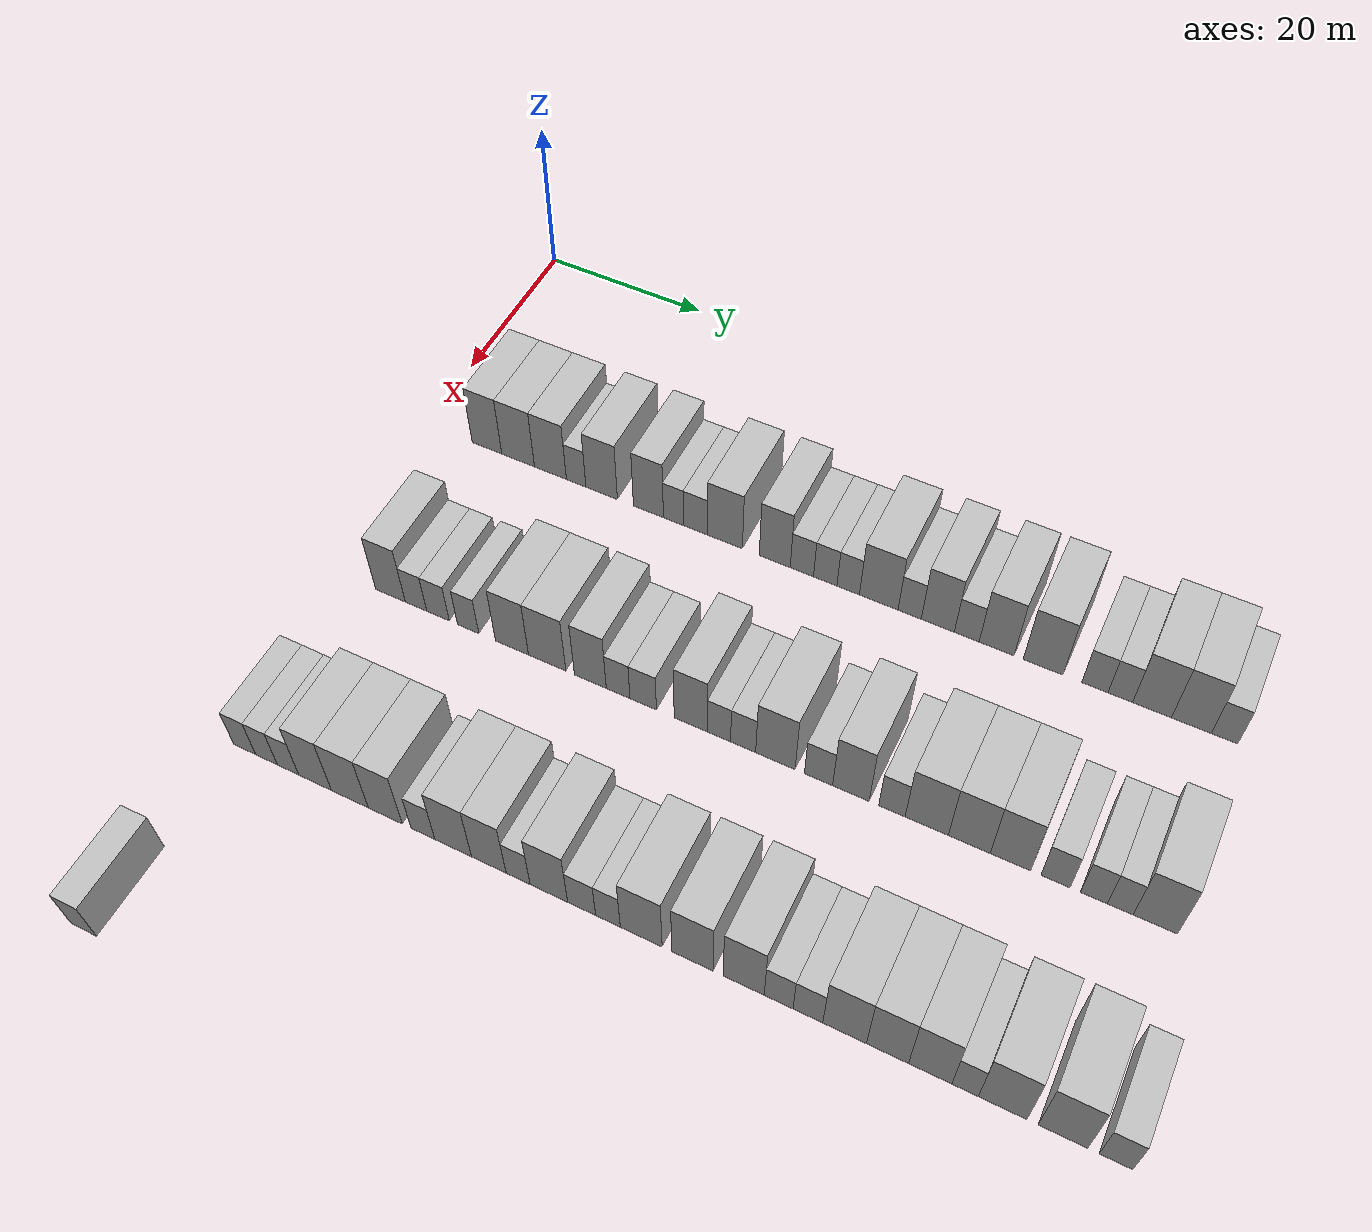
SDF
<sdf version="1.6">
 <world name="default">
  <model name="building_95">
   <static>1</static>
   <pose>25.0000 8.0468 0 0.000000 0.000000 0.000000</pose>
   <link name="link">
    <pose>0 0 4.50 0 0 0</pose>
    <collision name="collision"><geometry><box><size>10.0000 3.8719 9.0000</size></box></geometry></collision>
    <visual name="visual">
     <cast_shadows>0</cast_shadows>
     <geometry><box><size>10.0000 3.8719 9.0000</size></box></geometry>
     <material>
      <script>
       <uri>model://HANNAS_wall/materials/scripts</uri>
       <uri>model://HANNAS_wall/materials/textures</uri>
       <name>vrc/HANNAS_wall</name>
      </script>
     </material>
    </visual>
   </link>
  </model>
  <model name="building_96">
   <static>1</static>
   <pose>25.0000 12.1046 0 0.000000 0.000000 0.000000</pose>
   <link name="link">
    <pose>0 0 4.50 0 0 0</pose>
    <collision name="collision"><geometry><box><size>10.0000 4.2436 9.0000</size></box></geometry></collision>
    <visual name="visual">
     <cast_shadows>0</cast_shadows>
     <geometry><box><size>10.0000 4.2436 9.0000</size></box></geometry>
     <material>
      <script>
       <uri>model://HANNAS_wall/materials/scripts</uri>
       <uri>model://HANNAS_wall/materials/textures</uri>
       <name>vrc/HANNAS_wall</name>
      </script>
     </material>
    </visual>
   </link>
  </model>
  <model name="building_97">
   <static>1</static>
   <pose>25.0000 16.2711 0 0.000000 0.000000 0.000000</pose>
   <link name="link">
    <pose>0 0 4.50 0 0 0</pose>
    <collision name="collision"><geometry><box><size>10.0000 4.0893 9.0000</size></box></geometry></collision>
    <visual name="visual">
     <cast_shadows>0</cast_shadows>
     <geometry><box><size>10.0000 4.0893 9.0000</size></box></geometry>
     <material>
      <script>
       <uri>model://HANNAS_wall/materials/scripts</uri>
       <uri>model://HANNAS_wall/materials/textures</uri>
       <name>vrc/HANNAS_wall</name>
      </script>
     </material>
    </visual>
   </link>
  </model>
  <model name="building_98">
   <static>1</static>
   <pose>25.0000 19.5486 0 0.000000 0.000000 0.000000</pose>
   <link name="link">
    <pose>0 0 3.00 0 0 0</pose>
    <collision name="collision"><geometry><box><size>10.0000 2.4658 6.0000</size></box></geometry></collision>
    <visual name="visual">
     <cast_shadows>0</cast_shadows>
     <geometry><box><size>10.0000 2.4658 6.0000</size></box></geometry>
     <material>
      <script>
       <uri>model://HANNAS_wall/materials/scripts</uri>
       <uri>model://HANNAS_wall/materials/textures</uri>
       <name>vrc/HANNAS_wall</name>
      </script>
     </material>
    </visual>
   </link>
  </model>
  <model name="building_99">
   <static>1</static>
   <pose>25.0000 22.7601 0 0.000000 0.000000 0.000000</pose>
   <link name="link">
    <pose>0 0 4.50 0 0 0</pose>
    <collision name="collision"><geometry><box><size>10.0000 3.9572 9.0000</size></box></geometry></collision>
    <visual name="visual">
     <cast_shadows>0</cast_shadows>
     <geometry><box><size>10.0000 3.9572 9.0000</size></box></geometry>
     <material>
      <script>
       <uri>model://HANNAS_wall/materials/scripts</uri>
       <uri>model://HANNAS_wall/materials/textures</uri>
       <name>vrc/HANNAS_wall</name>
      </script>
     </material>
    </visual>
   </link>
  </model>
  <model name="building_100">
   <static>1</static>
   <pose>25.0000 28.5869 0 0.000000 0.000000 0.000000</pose>
   <link name="link">
    <pose>0 0 4.50 0 0 0</pose>
    <collision name="collision"><geometry><box><size>10.0000 3.6963 9.0000</size></box></geometry></collision>
    <visual name="visual">
     <cast_shadows>0</cast_shadows>
     <geometry><box><size>10.0000 3.6963 9.0000</size></box></geometry>
     <material>
      <script>
       <uri>model://HANNAS_wall/materials/scripts</uri>
       <uri>model://HANNAS_wall/materials/textures</uri>
       <name>vrc/HANNAS_wall</name>
      </script>
     </material>
    </visual>
   </link>
  </model>
  <model name="building_101">
   <static>1</static>
   <pose>25.0000 31.6583 0 0.000000 0.000000 0.000000</pose>
   <link name="link">
    <pose>0 0 3.00 0 0 0</pose>
    <collision name="collision"><geometry><box><size>10.0000 2.4466 6.0000</size></box></geometry></collision>
    <visual name="visual">
     <cast_shadows>0</cast_shadows>
     <geometry><box><size>10.0000 2.4466 6.0000</size></box></geometry>
     <material>
      <script>
       <uri>model://HANNAS_wall/materials/scripts</uri>
       <uri>model://HANNAS_wall/materials/textures</uri>
       <name>vrc/HANNAS_wall</name>
      </script>
     </material>
    </visual>
   </link>
  </model>
  <model name="building_102">
   <static>1</static>
   <pose>25.0000 34.3303 0 0.000000 0.000000 0.000000</pose>
   <link name="link">
    <pose>0 0 3.00 0 0 0</pose>
    <collision name="collision"><geometry><box><size>10.0000 2.8973 6.0000</size></box></geometry></collision>
    <visual name="visual">
     <cast_shadows>0</cast_shadows>
     <geometry><box><size>10.0000 2.8973 6.0000</size></box></geometry>
     <material>
      <script>
       <uri>model://HANNAS_wall/materials/scripts</uri>
       <uri>model://HANNAS_wall/materials/textures</uri>
       <name>vrc/HANNAS_wall</name>
      </script>
     </material>
    </visual>
   </link>
  </model>
  <model name="building_103">
   <static>1</static>
   <pose>25.0000 37.8821 0 0.000000 0.000000 0.000000</pose>
   <link name="link">
    <pose>0 0 4.50 0 0 0</pose>
    <collision name="collision"><geometry><box><size>10.0000 4.2063 9.0000</size></box></geometry></collision>
    <visual name="visual">
     <cast_shadows>0</cast_shadows>
     <geometry><box><size>10.0000 4.2063 9.0000</size></box></geometry>
     <material>
      <script>
       <uri>model://HANNAS_wall/materials/scripts</uri>
       <uri>model://HANNAS_wall/materials/textures</uri>
       <name>vrc/HANNAS_wall</name>
      </script>
     </material>
    </visual>
   </link>
  </model>
  <model name="building_104">
   <static>1</static>
   <pose>25.0000 43.8118 0 0.000000 0.000000 0.000000</pose>
   <link name="link">
    <pose>0 0 4.50 0 0 0</pose>
    <collision name="collision"><geometry><box><size>10.0000 3.6530 9.0000</size></box></geometry></collision>
    <visual name="visual">
     <cast_shadows>0</cast_shadows>
     <geometry><box><size>10.0000 3.6530 9.0000</size></box></geometry>
     <material>
      <script>
       <uri>model://HANNAS_wall/materials/scripts</uri>
       <uri>model://HANNAS_wall/materials/textures</uri>
       <name>vrc/HANNAS_wall</name>
      </script>
     </material>
    </visual>
   </link>
  </model>
  <model name="building_105">
   <static>1</static>
   <pose>25.0000 46.9983 0 0.000000 0.000000 0.000000</pose>
   <link name="link">
    <pose>0 0 3.00 0 0 0</pose>
    <collision name="collision"><geometry><box><size>10.0000 2.7202 6.0000</size></box></geometry></collision>
    <visual name="visual">
     <cast_shadows>0</cast_shadows>
     <geometry><box><size>10.0000 2.7202 6.0000</size></box></geometry>
     <material>
      <script>
       <uri>model://HANNAS_wall/materials/scripts</uri>
       <uri>model://HANNAS_wall/materials/textures</uri>
       <name>vrc/HANNAS_wall</name>
      </script>
     </material>
    </visual>
   </link>
  </model>
  <model name="building_106">
   <static>1</static>
   <pose>25.0000 49.7126 0 0.000000 0.000000 0.000000</pose>
   <link name="link">
    <pose>0 0 3.00 0 0 0</pose>
    <collision name="collision"><geometry><box><size>10.0000 2.7084 6.0000</size></box></geometry></collision>
    <visual name="visual">
     <cast_shadows>0</cast_shadows>
     <geometry><box><size>10.0000 2.7084 6.0000</size></box></geometry>
     <material>
      <script>
       <uri>model://HANNAS_wall/materials/scripts</uri>
       <uri>model://HANNAS_wall/materials/textures</uri>
       <name>vrc/HANNAS_wall</name>
      </script>
     </material>
    </visual>
   </link>
  </model>
  <model name="building_107">
   <static>1</static>
   <pose>25.0000 52.3566 0 0.000000 0.000000 0.000000</pose>
   <link name="link">
    <pose>0 0 3.00 0 0 0</pose>
    <collision name="collision"><geometry><box><size>10.0000 2.5796 6.0000</size></box></geometry></collision>
    <visual name="visual">
     <cast_shadows>0</cast_shadows>
     <geometry><box><size>10.0000 2.5796 6.0000</size></box></geometry>
     <material>
      <script>
       <uri>model://HANNAS_wall/materials/scripts</uri>
       <uri>model://HANNAS_wall/materials/textures</uri>
       <name>vrc/HANNAS_wall</name>
      </script>
     </material>
    </visual>
   </link>
  </model>
  <model name="building_108">
   <static>1</static>
   <pose>25.0000 55.8407 0 0.000000 0.000000 0.000000</pose>
   <link name="link">
    <pose>0 0 4.50 0 0 0</pose>
    <collision name="collision"><geometry><box><size>10.0000 4.3887 9.0000</size></box></geometry></collision>
    <visual name="visual">
     <cast_shadows>0</cast_shadows>
     <geometry><box><size>10.0000 4.3887 9.0000</size></box></geometry>
     <material>
      <script>
       <uri>model://HANNAS_wall/materials/scripts</uri>
       <uri>model://HANNAS_wall/materials/textures</uri>
       <name>vrc/HANNAS_wall</name>
      </script>
     </material>
    </visual>
   </link>
  </model>
  <model name="building_109">
   <static>1</static>
   <pose>25.0000 59.3371 0 0.000000 0.000000 0.000000</pose>
   <link name="link">
    <pose>0 0 3.00 0 0 0</pose>
    <collision name="collision"><geometry><box><size>10.0000 2.6041 6.0000</size></box></geometry></collision>
    <visual name="visual">
     <cast_shadows>0</cast_shadows>
     <geometry><box><size>10.0000 2.6041 6.0000</size></box></geometry>
     <material>
      <script>
       <uri>model://HANNAS_wall/materials/scripts</uri>
       <uri>model://HANNAS_wall/materials/textures</uri>
       <name>vrc/HANNAS_wall</name>
      </script>
     </material>
    </visual>
   </link>
  </model>
  <model name="building_110">
   <static>1</static>
   <pose>25.0000 62.4807 0 0.000000 0.000000 0.000000</pose>
   <link name="link">
    <pose>0 0 4.50 0 0 0</pose>
    <collision name="collision"><geometry><box><size>10.0000 3.6830 9.0000</size></box></geometry></collision>
    <visual name="visual">
     <cast_shadows>0</cast_shadows>
     <geometry><box><size>10.0000 3.6830 9.0000</size></box></geometry>
     <material>
      <script>
       <uri>model://HANNAS_wall/materials/scripts</uri>
       <uri>model://HANNAS_wall/materials/textures</uri>
       <name>vrc/HANNAS_wall</name>
      </script>
     </material>
    </visual>
   </link>
  </model>
  <model name="building_111">
   <static>1</static>
   <pose>25.0000 65.6904 0 0.000000 0.000000 0.000000</pose>
   <link name="link">
    <pose>0 0 3.00 0 0 0</pose>
    <collision name="collision"><geometry><box><size>10.0000 2.7364 6.0000</size></box></geometry></collision>
    <visual name="visual">
     <cast_shadows>0</cast_shadows>
     <geometry><box><size>10.0000 2.7364 6.0000</size></box></geometry>
     <material>
      <script>
       <uri>model://HANNAS_wall/materials/scripts</uri>
       <uri>model://HANNAS_wall/materials/textures</uri>
       <name>vrc/HANNAS_wall</name>
      </script>
     </material>
    </visual>
   </link>
  </model>
  <model name="building_112">
   <static>1</static>
   <pose>25.0000 68.9587 0 0.000000 0.000000 0.000000</pose>
   <link name="link">
    <pose>0 0 4.50 0 0 0</pose>
    <collision name="collision"><geometry><box><size>10.0000 3.8002 9.0000</size></box></geometry></collision>
    <visual name="visual">
     <cast_shadows>0</cast_shadows>
     <geometry><box><size>10.0000 3.8002 9.0000</size></box></geometry>
     <material>
      <script>
       <uri>model://HANNAS_wall/materials/scripts</uri>
       <uri>model://HANNAS_wall/materials/textures</uri>
       <name>vrc/HANNAS_wall</name>
      </script>
     </material>
    </visual>
   </link>
  </model>
  <model name="building_113">
   <static>1</static>
   <pose>25.0000 73.9877 0 0.000000 0.000000 0.000000</pose>
   <link name="link">
    <pose>0 0 4.50 0 0 0</pose>
    <collision name="collision"><geometry><box><size>10.0000 4.2578 9.0000</size></box></geometry></collision>
    <visual name="visual">
     <cast_shadows>0</cast_shadows>
     <geometry><box><size>10.0000 4.2578 9.0000</size></box></geometry>
     <material>
      <script>
       <uri>model://HANNAS_wall/materials/scripts</uri>
       <uri>model://HANNAS_wall/materials/textures</uri>
       <name>vrc/HANNAS_wall</name>
      </script>
     </material>
    </visual>
   </link>
  </model>
  <model name="building_114">
   <static>1</static>
   <pose>25.0000 79.4991 0 0.000000 0.000000 0.000000</pose>
   <link name="link">
    <pose>0 0 3.00 0 0 0</pose>
    <collision name="collision"><geometry><box><size>10.0000 2.7650 6.0000</size></box></geometry></collision>
    <visual name="visual">
     <cast_shadows>0</cast_shadows>
     <geometry><box><size>10.0000 2.7650 6.0000</size></box></geometry>
     <material>
      <script>
       <uri>model://HANNAS_wall/materials/scripts</uri>
       <uri>model://HANNAS_wall/materials/textures</uri>
       <name>vrc/HANNAS_wall</name>
      </script>
     </material>
    </visual>
   </link>
  </model>
  <model name="building_115">
   <static>1</static>
   <pose>25.0000 82.1632 0 0.000000 0.000000 0.000000</pose>
   <link name="link">
    <pose>0 0 3.00 0 0 0</pose>
    <collision name="collision"><geometry><box><size>10.0000 2.5633 6.0000</size></box></geometry></collision>
    <visual name="visual">
     <cast_shadows>0</cast_shadows>
     <geometry><box><size>10.0000 2.5633 6.0000</size></box></geometry>
     <material>
      <script>
       <uri>model://HANNAS_wall/materials/scripts</uri>
       <uri>model://HANNAS_wall/materials/textures</uri>
       <name>vrc/HANNAS_wall</name>
      </script>
     </material>
    </visual>
   </link>
  </model>
  <model name="building_116">
   <static>1</static>
   <pose>25.0000 85.4532 0 0.000000 0.000000 0.000000</pose>
   <link name="link">
    <pose>0 0 4.50 0 0 0</pose>
    <collision name="collision"><geometry><box><size>10.0000 4.0166 9.0000</size></box></geometry></collision>
    <visual name="visual">
     <cast_shadows>0</cast_shadows>
     <geometry><box><size>10.0000 4.0166 9.0000</size></box></geometry>
     <material>
      <script>
       <uri>model://HANNAS_wall/materials/scripts</uri>
       <uri>model://HANNAS_wall/materials/textures</uri>
       <name>vrc/HANNAS_wall</name>
      </script>
     </material>
    </visual>
   </link>
  </model>
  <model name="building_117">
   <static>1</static>
   <pose>25.0000 89.4891 0 0.000000 0.000000 0.000000</pose>
   <link name="link">
    <pose>0 0 4.50 0 0 0</pose>
    <collision name="collision"><geometry><box><size>10.0000 4.0552 9.0000</size></box></geometry></collision>
    <visual name="visual">
     <cast_shadows>0</cast_shadows>
     <geometry><box><size>10.0000 4.0552 9.0000</size></box></geometry>
     <material>
      <script>
       <uri>model://HANNAS_wall/materials/scripts</uri>
       <uri>model://HANNAS_wall/materials/textures</uri>
       <name>vrc/HANNAS_wall</name>
      </script>
     </material>
    </visual>
   </link>
  </model>
  <model name="building_118">
   <static>1</static>
   <pose>25.0000 92.8582 0 0.000000 0.000000 0.000000</pose>
   <link name="link">
    <pose>0 0 3.00 0 0 0</pose>
    <collision name="collision"><geometry><box><size>10.0000 2.6830 6.0000</size></box></geometry></collision>
    <visual name="visual">
     <cast_shadows>0</cast_shadows>
     <geometry><box><size>10.0000 2.6830 6.0000</size></box></geometry>
     <material>
      <script>
       <uri>model://HANNAS_wall/materials/scripts</uri>
       <uri>model://HANNAS_wall/materials/textures</uri>
       <name>vrc/HANNAS_wall</name>
      </script>
     </material>
    </visual>
   </link>
  </model>
  <model name="building_288">
   <static>1</static>
   <pose>47.0000 9.3453 0 0.000000 0.000000 0.000000</pose>
   <link name="link">
    <pose>0 0 4.50 0 0 0</pose>
    <collision name="collision"><geometry><box><size>10.0000 3.7060 9.0000</size></box></geometry></collision>
    <visual name="visual">
     <cast_shadows>0</cast_shadows>
     <geometry><box><size>10.0000 3.7060 9.0000</size></box></geometry>
     <material>
      <script>
       <uri>model://HANNAS_wall/materials/scripts</uri>
       <uri>model://HANNAS_wall/materials/textures</uri>
       <name>vrc/HANNAS_wall</name>
      </script>
     </material>
    </visual>
   </link>
  </model>
  <model name="building_289">
   <static>1</static>
   <pose>47.0000 12.5173 0 0.000000 0.000000 0.000000</pose>
   <link name="link">
    <pose>0 0 3.00 0 0 0</pose>
    <collision name="collision"><geometry><box><size>10.0000 2.6381 6.0000</size></box></geometry></collision>
    <visual name="visual">
     <cast_shadows>0</cast_shadows>
     <geometry><box><size>10.0000 2.6381 6.0000</size></box></geometry>
     <material>
      <script>
       <uri>model://HANNAS_wall/materials/scripts</uri>
       <uri>model://HANNAS_wall/materials/textures</uri>
       <name>vrc/HANNAS_wall</name>
      </script>
     </material>
    </visual>
   </link>
  </model>
  <model name="building_290">
   <static>1</static>
   <pose>47.0000 15.2158 0 0.000000 0.000000 0.000000</pose>
   <link name="link">
    <pose>0 0 3.00 0 0 0</pose>
    <collision name="collision"><geometry><box><size>10.0000 2.7587 6.0000</size></box></geometry></collision>
    <visual name="visual">
     <cast_shadows>0</cast_shadows>
     <geometry><box><size>10.0000 2.7587 6.0000</size></box></geometry>
     <material>
      <script>
       <uri>model://HANNAS_wall/materials/scripts</uri>
       <uri>model://HANNAS_wall/materials/textures</uri>
       <name>vrc/HANNAS_wall</name>
      </script>
     </material>
    </visual>
   </link>
  </model>
  <model name="building_291">
   <static>1</static>
   <pose>47.0000 18.8848 0 0.000000 0.000000 0.000000</pose>
   <link name="link">
    <pose>0 0 3.00 0 0 0</pose>
    <collision name="collision"><geometry><box><size>10.0000 2.5795 6.0000</size></box></geometry></collision>
    <visual name="visual">
     <cast_shadows>0</cast_shadows>
     <geometry><box><size>10.0000 2.5795 6.0000</size></box></geometry>
     <material>
      <script>
       <uri>model://HANNAS_wall/materials/scripts</uri>
       <uri>model://HANNAS_wall/materials/textures</uri>
       <name>vrc/HANNAS_wall</name>
      </script>
     </material>
    </visual>
   </link>
  </model>
  <model name="building_292">
   <static>1</static>
   <pose>47.0000 24.1406 0 0.000000 0.000000 0.000000</pose>
   <link name="link">
    <pose>0 0 4.50 0 0 0</pose>
    <collision name="collision"><geometry><box><size>10.0000 3.9321 9.0000</size></box></geometry></collision>
    <visual name="visual">
     <cast_shadows>0</cast_shadows>
     <geometry><box><size>10.0000 3.9321 9.0000</size></box></geometry>
     <material>
      <script>
       <uri>model://HANNAS_wall/materials/scripts</uri>
       <uri>model://HANNAS_wall/materials/textures</uri>
       <name>vrc/HANNAS_wall</name>
      </script>
     </material>
    </visual>
   </link>
  </model>
  <model name="building_293">
   <static>1</static>
   <pose>47.0000 28.2980 0 0.000000 0.000000 0.000000</pose>
   <link name="link">
    <pose>0 0 4.50 0 0 0</pose>
    <collision name="collision"><geometry><box><size>10.0000 4.3827 9.0000</size></box></geometry></collision>
    <visual name="visual">
     <cast_shadows>0</cast_shadows>
     <geometry><box><size>10.0000 4.3827 9.0000</size></box></geometry>
     <material>
      <script>
       <uri>model://HANNAS_wall/materials/scripts</uri>
       <uri>model://HANNAS_wall/materials/textures</uri>
       <name>vrc/HANNAS_wall</name>
      </script>
     </material>
    </visual>
   </link>
  </model>
  <model name="building_294">
   <static>1</static>
   <pose>47.0000 33.3296 0 0.000000 0.000000 0.000000</pose>
   <link name="link">
    <pose>0 0 4.50 0 0 0</pose>
    <collision name="collision"><geometry><box><size>10.0000 3.6807 9.0000</size></box></geometry></collision>
    <visual name="visual">
     <cast_shadows>0</cast_shadows>
     <geometry><box><size>10.0000 3.6807 9.0000</size></box></geometry>
     <material>
      <script>
       <uri>model://HANNAS_wall/materials/scripts</uri>
       <uri>model://HANNAS_wall/materials/textures</uri>
       <name>vrc/HANNAS_wall</name>
      </script>
     </material>
    </visual>
   </link>
  </model>
  <model name="building_295">
   <static>1</static>
   <pose>47.0000 36.5241 0 0.000000 0.000000 0.000000</pose>
   <link name="link">
    <pose>0 0 3.00 0 0 0</pose>
    <collision name="collision"><geometry><box><size>10.0000 2.7083 6.0000</size></box></geometry></collision>
    <visual name="visual">
     <cast_shadows>0</cast_shadows>
     <geometry><box><size>10.0000 2.7083 6.0000</size></box></geometry>
     <material>
      <script>
       <uri>model://HANNAS_wall/materials/scripts</uri>
       <uri>model://HANNAS_wall/materials/textures</uri>
       <name>vrc/HANNAS_wall</name>
      </script>
     </material>
    </visual>
   </link>
  </model>
  <model name="building_296">
   <static>1</static>
   <pose>47.0000 39.3765 0 0.000000 0.000000 0.000000</pose>
   <link name="link">
    <pose>0 0 3.00 0 0 0</pose>
    <collision name="collision"><geometry><box><size>10.0000 2.9965 6.0000</size></box></geometry></collision>
    <visual name="visual">
     <cast_shadows>0</cast_shadows>
     <geometry><box><size>10.0000 2.9965 6.0000</size></box></geometry>
     <material>
      <script>
       <uri>model://HANNAS_wall/materials/scripts</uri>
       <uri>model://HANNAS_wall/materials/textures</uri>
       <name>vrc/HANNAS_wall</name>
      </script>
     </material>
    </visual>
   </link>
  </model>
  <model name="building_297">
   <static>1</static>
   <pose>47.0000 44.7161 0 0.000000 0.000000 0.000000</pose>
   <link name="link">
    <pose>0 0 4.50 0 0 0</pose>
    <collision name="collision"><geometry><box><size>10.0000 3.6826 9.0000</size></box></geometry></collision>
    <visual name="visual">
     <cast_shadows>0</cast_shadows>
     <geometry><box><size>10.0000 3.6826 9.0000</size></box></geometry>
     <material>
      <script>
       <uri>model://HANNAS_wall/materials/scripts</uri>
       <uri>model://HANNAS_wall/materials/textures</uri>
       <name>vrc/HANNAS_wall</name>
      </script>
     </material>
    </visual>
   </link>
  </model>
  <model name="building_298">
   <static>1</static>
   <pose>47.0000 47.8355 0 0.000000 0.000000 0.000000</pose>
   <link name="link">
    <pose>0 0 3.00 0 0 0</pose>
    <collision name="collision"><geometry><box><size>10.0000 2.5564 6.0000</size></box></geometry></collision>
    <visual name="visual">
     <cast_shadows>0</cast_shadows>
     <geometry><box><size>10.0000 2.5564 6.0000</size></box></geometry>
     <material>
      <script>
       <uri>model://HANNAS_wall/materials/scripts</uri>
       <uri>model://HANNAS_wall/materials/textures</uri>
       <name>vrc/HANNAS_wall</name>
      </script>
     </material>
    </visual>
   </link>
  </model>
  <model name="building_299">
   <static>1</static>
   <pose>47.0000 50.4851 0 0.000000 0.000000 0.000000</pose>
   <link name="link">
    <pose>0 0 3.00 0 0 0</pose>
    <collision name="collision"><geometry><box><size>10.0000 2.7427 6.0000</size></box></geometry></collision>
    <visual name="visual">
     <cast_shadows>0</cast_shadows>
     <geometry><box><size>10.0000 2.7427 6.0000</size></box></geometry>
     <material>
      <script>
       <uri>model://HANNAS_wall/materials/scripts</uri>
       <uri>model://HANNAS_wall/materials/textures</uri>
       <name>vrc/HANNAS_wall</name>
      </script>
     </material>
    </visual>
   </link>
  </model>
  <model name="building_300">
   <static>1</static>
   <pose>47.0000 53.9841 0 0.000000 0.000000 0.000000</pose>
   <link name="link">
    <pose>0 0 4.50 0 0 0</pose>
    <collision name="collision"><geometry><box><size>10.0000 4.2552 9.0000</size></box></geometry></collision>
    <visual name="visual">
     <cast_shadows>0</cast_shadows>
     <geometry><box><size>10.0000 4.2552 9.0000</size></box></geometry>
     <material>
      <script>
       <uri>model://HANNAS_wall/materials/scripts</uri>
       <uri>model://HANNAS_wall/materials/textures</uri>
       <name>vrc/HANNAS_wall</name>
      </script>
     </material>
    </visual>
   </link>
  </model>
  <model name="building_301">
   <static>1</static>
   <pose>47.0000 58.6074 0 0.000000 0.000000 0.000000</pose>
   <link name="link">
    <pose>0 0 3.00 0 0 0</pose>
    <collision name="collision"><geometry><box><size>10.0000 2.9916 6.0000</size></box></geometry></collision>
    <visual name="visual">
     <cast_shadows>0</cast_shadows>
     <geometry><box><size>10.0000 2.9916 6.0000</size></box></geometry>
     <material>
      <script>
       <uri>model://HANNAS_wall/materials/scripts</uri>
       <uri>model://HANNAS_wall/materials/textures</uri>
       <name>vrc/HANNAS_wall</name>
      </script>
     </material>
    </visual>
   </link>
  </model>
  <model name="building_302">
   <static>1</static>
   <pose>47.0000 62.0262 0 0.000000 0.000000 0.000000</pose>
   <link name="link">
    <pose>0 0 4.50 0 0 0</pose>
    <collision name="collision"><geometry><box><size>10.0000 3.8460 9.0000</size></box></geometry></collision>
    <visual name="visual">
     <cast_shadows>0</cast_shadows>
     <geometry><box><size>10.0000 3.8460 9.0000</size></box></geometry>
     <material>
      <script>
       <uri>model://HANNAS_wall/materials/scripts</uri>
       <uri>model://HANNAS_wall/materials/textures</uri>
       <name>vrc/HANNAS_wall</name>
      </script>
     </material>
    </visual>
   </link>
  </model>
  <model name="building_303">
   <static>1</static>
   <pose>47.0000 66.3145 0 0.000000 0.000000 0.000000</pose>
   <link name="link">
    <pose>0 0 3.00 0 0 0</pose>
    <collision name="collision"><geometry><box><size>10.0000 2.7306 6.0000</size></box></geometry></collision>
    <visual name="visual">
     <cast_shadows>0</cast_shadows>
     <geometry><box><size>10.0000 2.7306 6.0000</size></box></geometry>
     <material>
      <script>
       <uri>model://HANNAS_wall/materials/scripts</uri>
       <uri>model://HANNAS_wall/materials/textures</uri>
       <name>vrc/HANNAS_wall</name>
      </script>
     </material>
    </visual>
   </link>
  </model>
  <model name="building_304">
   <static>1</static>
   <pose>47.0000 69.8937 0 0.000000 0.000000 0.000000</pose>
   <link name="link">
    <pose>0 0 4.50 0 0 0</pose>
    <collision name="collision"><geometry><box><size>10.0000 4.4277 9.0000</size></box></geometry></collision>
    <visual name="visual">
     <cast_shadows>0</cast_shadows>
     <geometry><box><size>10.0000 4.4277 9.0000</size></box></geometry>
     <material>
      <script>
       <uri>model://HANNAS_wall/materials/scripts</uri>
       <uri>model://HANNAS_wall/materials/textures</uri>
       <name>vrc/HANNAS_wall</name>
      </script>
     </material>
    </visual>
   </link>
  </model>
  <model name="building_305">
   <static>1</static>
   <pose>47.0000 74.2172 0 0.000000 0.000000 0.000000</pose>
   <link name="link">
    <pose>0 0 4.50 0 0 0</pose>
    <collision name="collision"><geometry><box><size>10.0000 4.2193 9.0000</size></box></geometry></collision>
    <visual name="visual">
     <cast_shadows>0</cast_shadows>
     <geometry><box><size>10.0000 4.2193 9.0000</size></box></geometry>
     <material>
      <script>
       <uri>model://HANNAS_wall/materials/scripts</uri>
       <uri>model://HANNAS_wall/materials/textures</uri>
       <name>vrc/HANNAS_wall</name>
      </script>
     </material>
    </visual>
   </link>
  </model>
  <model name="building_306">
   <static>1</static>
   <pose>47.0000 78.3452 0 0.000000 0.000000 0.000000</pose>
   <link name="link">
    <pose>0 0 4.50 0 0 0</pose>
    <collision name="collision"><geometry><box><size>10.0000 4.0367 9.0000</size></box></geometry></collision>
    <visual name="visual">
     <cast_shadows>0</cast_shadows>
     <geometry><box><size>10.0000 4.0367 9.0000</size></box></geometry>
     <material>
      <script>
       <uri>model://HANNAS_wall/materials/scripts</uri>
       <uri>model://HANNAS_wall/materials/textures</uri>
       <name>vrc/HANNAS_wall</name>
      </script>
     </material>
    </visual>
   </link>
  </model>
  <model name="building_307">
   <static>1</static>
   <pose>47.0000 82.7943 0 0.000000 0.000000 0.000000</pose>
   <link name="link">
    <pose>0 0 3.00 0 0 0</pose>
    <collision name="collision"><geometry><box><size>10.0000 2.8616 6.0000</size></box></geometry></collision>
    <visual name="visual">
     <cast_shadows>0</cast_shadows>
     <geometry><box><size>10.0000 2.8616 6.0000</size></box></geometry>
     <material>
      <script>
       <uri>model://HANNAS_wall/materials/scripts</uri>
       <uri>model://HANNAS_wall/materials/textures</uri>
       <name>vrc/HANNAS_wall</name>
      </script>
     </material>
    </visual>
   </link>
  </model>
  <model name="building_308">
   <static>1</static>
   <pose>47.0000 86.5186 0 0.000000 0.000000 0.000000</pose>
   <link name="link">
    <pose>0 0 3.00 0 0 0</pose>
    <collision name="collision"><geometry><box><size>10.0000 2.5869 6.0000</size></box></geometry></collision>
    <visual name="visual">
     <cast_shadows>0</cast_shadows>
     <geometry><box><size>10.0000 2.5869 6.0000</size></box></geometry>
     <material>
      <script>
       <uri>model://HANNAS_wall/materials/scripts</uri>
       <uri>model://HANNAS_wall/materials/textures</uri>
       <name>vrc/HANNAS_wall</name>
      </script>
     </material>
    </visual>
   </link>
  </model>
  <model name="building_309">
   <static>1</static>
   <pose>47.0000 89.0448 0 0.000000 0.000000 0.000000</pose>
   <link name="link">
    <pose>0 0 3.00 0 0 0</pose>
    <collision name="collision"><geometry><box><size>10.0000 2.4655 6.0000</size></box></geometry></collision>
    <visual name="visual">
     <cast_shadows>0</cast_shadows>
     <geometry><box><size>10.0000 2.4655 6.0000</size></box></geometry>
     <material>
      <script>
       <uri>model://HANNAS_wall/materials/scripts</uri>
       <uri>model://HANNAS_wall/materials/textures</uri>
       <name>vrc/HANNAS_wall</name>
      </script>
     </material>
    </visual>
   </link>
  </model>
  <model name="building_310">
   <static>1</static>
   <pose>47.0000 92.3835 0 0.000000 0.000000 0.000000</pose>
   <link name="link">
    <pose>0 0 4.50 0 0 0</pose>
    <collision name="collision"><geometry><box><size>10.0000 4.2121 9.0000</size></box></geometry></collision>
    <visual name="visual">
     <cast_shadows>0</cast_shadows>
     <geometry><box><size>10.0000 4.2121 9.0000</size></box></geometry>
     <material>
      <script>
       <uri>model://HANNAS_wall/materials/scripts</uri>
       <uri>model://HANNAS_wall/materials/textures</uri>
       <name>vrc/HANNAS_wall</name>
      </script>
     </material>
    </visual>
   </link>
  </model>
  <model name="building_483">
   <static>1</static>
   <pose>69.0000 6.5320 0 0.000000 0.000000 0.000000</pose>
   <link name="link">
    <pose>0 0 3.00 0 0 0</pose>
    <collision name="collision"><geometry><box><size>10.0000 2.6346 6.0000</size></box></geometry></collision>
    <visual name="visual">
     <cast_shadows>0</cast_shadows>
     <geometry><box><size>10.0000 2.6346 6.0000</size></box></geometry>
     <material>
      <script>
       <uri>model://HANNAS_wall/materials/scripts</uri>
       <uri>model://HANNAS_wall/materials/textures</uri>
       <name>vrc/HANNAS_wall</name>
      </script>
     </material>
    </visual>
   </link>
  </model>
  <model name="building_484">
   <static>1</static>
   <pose>69.0000 9.1339 0 0.000000 0.000000 0.000000</pose>
   <link name="link">
    <pose>0 0 3.00 0 0 0</pose>
    <collision name="collision"><geometry><box><size>10.0000 2.5693 6.0000</size></box></geometry></collision>
    <visual name="visual">
     <cast_shadows>0</cast_shadows>
     <geometry><box><size>10.0000 2.5693 6.0000</size></box></geometry>
     <material>
      <script>
       <uri>model://HANNAS_wall/materials/scripts</uri>
       <uri>model://HANNAS_wall/materials/textures</uri>
       <name>vrc/HANNAS_wall</name>
      </script>
     </material>
    </visual>
   </link>
  </model>
  <model name="building_485">
   <static>1</static>
   <pose>69.0000 11.6841 0 0.000000 0.000000 0.000000</pose>
   <link name="link">
    <pose>0 0 3.00 0 0 0</pose>
    <collision name="collision"><geometry><box><size>10.0000 2.5310 6.0000</size></box></geometry></collision>
    <visual name="visual">
     <cast_shadows>0</cast_shadows>
     <geometry><box><size>10.0000 2.5310 6.0000</size></box></geometry>
     <material>
      <script>
       <uri>model://HANNAS_wall/materials/scripts</uri>
       <uri>model://HANNAS_wall/materials/textures</uri>
       <name>vrc/HANNAS_wall</name>
      </script>
     </material>
    </visual>
   </link>
  </model>
  <model name="building_486">
   <static>1</static>
   <pose>69.0000 14.8546 0 0.000000 0.000000 0.000000</pose>
   <link name="link">
    <pose>0 0 4.50 0 0 0</pose>
    <collision name="collision"><geometry><box><size>10.0000 3.8100 9.0000</size></box></geometry></collision>
    <visual name="visual">
     <cast_shadows>0</cast_shadows>
     <geometry><box><size>10.0000 3.8100 9.0000</size></box></geometry>
     <material>
      <script>
       <uri>model://HANNAS_wall/materials/scripts</uri>
       <uri>model://HANNAS_wall/materials/textures</uri>
       <name>vrc/HANNAS_wall</name>
      </script>
     </material>
    </visual>
   </link>
  </model>
  <model name="building_487">
   <static>1</static>
   <pose>69.0000 18.8830 0 0.000000 0.000000 0.000000</pose>
   <link name="link">
    <pose>0 0 4.50 0 0 0</pose>
    <collision name="collision"><geometry><box><size>10.0000 4.2468 9.0000</size></box></geometry></collision>
    <visual name="visual">
     <cast_shadows>0</cast_shadows>
     <geometry><box><size>10.0000 4.2468 9.0000</size></box></geometry>
     <material>
      <script>
       <uri>model://HANNAS_wall/materials/scripts</uri>
       <uri>model://HANNAS_wall/materials/textures</uri>
       <name>vrc/HANNAS_wall</name>
      </script>
     </material>
    </visual>
   </link>
  </model>
  <model name="building_488">
   <static>1</static>
   <pose>69.0000 22.9287 0 0.000000 0.000000 0.000000</pose>
   <link name="link">
    <pose>0 0 4.50 0 0 0</pose>
    <collision name="collision"><geometry><box><size>10.0000 3.8445 9.0000</size></box></geometry></collision>
    <visual name="visual">
     <cast_shadows>0</cast_shadows>
     <geometry><box><size>10.0000 3.8445 9.0000</size></box></geometry>
     <material>
      <script>
       <uri>model://HANNAS_wall/materials/scripts</uri>
       <uri>model://HANNAS_wall/materials/textures</uri>
       <name>vrc/HANNAS_wall</name>
      </script>
     </material>
    </visual>
   </link>
  </model>
  <model name="building_489">
   <static>1</static>
   <pose>69.0000 27.1779 0 0.000000 0.000000 0.000000</pose>
   <link name="link">
    <pose>0 0 3.00 0 0 0</pose>
    <collision name="collision"><geometry><box><size>10.0000 2.6539 6.0000</size></box></geometry></collision>
    <visual name="visual">
     <cast_shadows>0</cast_shadows>
     <geometry><box><size>10.0000 2.6539 6.0000</size></box></geometry>
     <material>
      <script>
       <uri>model://HANNAS_wall/materials/scripts</uri>
       <uri>model://HANNAS_wall/materials/textures</uri>
       <name>vrc/HANNAS_wall</name>
      </script>
     </material>
    </visual>
   </link>
  </model>
  <model name="building_490">
   <static>1</static>
   <pose>69.0000 30.5329 0 0.000000 0.000000 0.000000</pose>
   <link name="link">
    <pose>0 0 4.50 0 0 0</pose>
    <collision name="collision"><geometry><box><size>10.0000 4.0562 9.0000</size></box></geometry></collision>
    <visual name="visual">
     <cast_shadows>0</cast_shadows>
     <geometry><box><size>10.0000 4.0562 9.0000</size></box></geometry>
     <material>
      <script>
       <uri>model://HANNAS_wall/materials/scripts</uri>
       <uri>model://HANNAS_wall/materials/textures</uri>
       <name>vrc/HANNAS_wall</name>
      </script>
     </material>
    </visual>
   </link>
  </model>
  <model name="building_491">
   <static>1</static>
   <pose>69.0000 34.4529 0 0.000000 0.000000 0.000000</pose>
   <link name="link">
    <pose>0 0 4.50 0 0 0</pose>
    <collision name="collision"><geometry><box><size>10.0000 3.7838 9.0000</size></box></geometry></collision>
    <visual name="visual">
     <cast_shadows>0</cast_shadows>
     <geometry><box><size>10.0000 3.7838 9.0000</size></box></geometry>
     <material>
      <script>
       <uri>model://HANNAS_wall/materials/scripts</uri>
       <uri>model://HANNAS_wall/materials/textures</uri>
       <name>vrc/HANNAS_wall</name>
      </script>
     </material>
    </visual>
   </link>
  </model>
  <model name="building_492">
   <static>1</static>
   <pose>69.0000 37.6358 0 0.000000 0.000000 0.000000</pose>
   <link name="link">
    <pose>0 0 3.00 0 0 0</pose>
    <collision name="collision"><geometry><box><size>10.0000 2.5820 6.0000</size></box></geometry></collision>
    <visual name="visual">
     <cast_shadows>0</cast_shadows>
     <geometry><box><size>10.0000 2.5820 6.0000</size></box></geometry>
     <material>
      <script>
       <uri>model://HANNAS_wall/materials/scripts</uri>
       <uri>model://HANNAS_wall/materials/textures</uri>
       <name>vrc/HANNAS_wall</name>
      </script>
     </material>
    </visual>
   </link>
  </model>
  <model name="building_493">
   <static>1</static>
   <pose>69.0000 40.9284 0 0.000000 0.000000 0.000000</pose>
   <link name="link">
    <pose>0 0 4.50 0 0 0</pose>
    <collision name="collision"><geometry><box><size>10.0000 4.0031 9.0000</size></box></geometry></collision>
    <visual name="visual">
     <cast_shadows>0</cast_shadows>
     <geometry><box><size>10.0000 4.0031 9.0000</size></box></geometry>
     <material>
      <script>
       <uri>model://HANNAS_wall/materials/scripts</uri>
       <uri>model://HANNAS_wall/materials/textures</uri>
       <name>vrc/HANNAS_wall</name>
      </script>
     </material>
    </visual>
   </link>
  </model>
  <model name="building_494">
   <static>1</static>
   <pose>69.0000 44.4033 0 0.000000 0.000000 0.000000</pose>
   <link name="link">
    <pose>0 0 3.00 0 0 0</pose>
    <collision name="collision"><geometry><box><size>10.0000 2.9468 6.0000</size></box></geometry></collision>
    <visual name="visual">
     <cast_shadows>0</cast_shadows>
     <geometry><box><size>10.0000 2.9468 6.0000</size></box></geometry>
     <material>
      <script>
       <uri>model://HANNAS_wall/materials/scripts</uri>
       <uri>model://HANNAS_wall/materials/textures</uri>
       <name>vrc/HANNAS_wall</name>
      </script>
     </material>
    </visual>
   </link>
  </model>
  <model name="building_495">
   <static>1</static>
   <pose>69.0000 47.1619 0 0.000000 0.000000 0.000000</pose>
   <link name="link">
    <pose>0 0 3.00 0 0 0</pose>
    <collision name="collision"><geometry><box><size>10.0000 2.5704 6.0000</size></box></geometry></collision>
    <visual name="visual">
     <cast_shadows>0</cast_shadows>
     <geometry><box><size>10.0000 2.5704 6.0000</size></box></geometry>
     <material>
      <script>
       <uri>model://HANNAS_wall/materials/scripts</uri>
       <uri>model://HANNAS_wall/materials/textures</uri>
       <name>vrc/HANNAS_wall</name>
      </script>
     </material>
    </visual>
   </link>
  </model>
  <model name="building_496">
   <static>1</static>
   <pose>69.0000 50.6036 0 0.000000 0.000000 0.000000</pose>
   <link name="link">
    <pose>0 0 4.50 0 0 0</pose>
    <collision name="collision"><geometry><box><size>10.0000 4.3130 9.0000</size></box></geometry></collision>
    <visual name="visual">
     <cast_shadows>0</cast_shadows>
     <geometry><box><size>10.0000 4.3130 9.0000</size></box></geometry>
     <material>
      <script>
       <uri>model://HANNAS_wall/materials/scripts</uri>
       <uri>model://HANNAS_wall/materials/textures</uri>
       <name>vrc/HANNAS_wall</name>
      </script>
     </material>
    </visual>
   </link>
  </model>
  <model name="building_497">
   <static>1</static>
   <pose>69.0000 55.8401 0 0.000000 0.000000 0.000000</pose>
   <link name="link">
    <pose>0 0 4.50 0 0 0</pose>
    <collision name="collision"><geometry><box><size>10.0000 4.1602 9.0000</size></box></geometry></collision>
    <visual name="visual">
     <cast_shadows>0</cast_shadows>
     <geometry><box><size>10.0000 4.1602 9.0000</size></box></geometry>
     <material>
      <script>
       <uri>model://HANNAS_wall/materials/scripts</uri>
       <uri>model://HANNAS_wall/materials/textures</uri>
       <name>vrc/HANNAS_wall</name>
      </script>
     </material>
    </visual>
   </link>
  </model>
  <model name="building_498">
   <static>1</static>
   <pose>69.0000 60.9576 0 0.000000 0.000000 0.000000</pose>
   <link name="link">
    <pose>0 0 4.50 0 0 0</pose>
    <collision name="collision"><geometry><box><size>10.0000 4.0746 9.0000</size></box></geometry></collision>
    <visual name="visual">
     <cast_shadows>0</cast_shadows>
     <geometry><box><size>10.0000 4.0746 9.0000</size></box></geometry>
     <material>
      <script>
       <uri>model://HANNAS_wall/materials/scripts</uri>
       <uri>model://HANNAS_wall/materials/textures</uri>
       <name>vrc/HANNAS_wall</name>
      </script>
     </material>
    </visual>
   </link>
  </model>
  <model name="building_499">
   <static>1</static>
   <pose>69.0000 64.4072 0 0.000000 0.000000 0.000000</pose>
   <link name="link">
    <pose>0 0 3.00 0 0 0</pose>
    <collision name="collision"><geometry><box><size>10.0000 2.8246 6.0000</size></box></geometry></collision>
    <visual name="visual">
     <cast_shadows>0</cast_shadows>
     <geometry><box><size>10.0000 2.8246 6.0000</size></box></geometry>
     <material>
      <script>
       <uri>model://HANNAS_wall/materials/scripts</uri>
       <uri>model://HANNAS_wall/materials/textures</uri>
       <name>vrc/HANNAS_wall</name>
      </script>
     </material>
    </visual>
   </link>
  </model>
  <model name="building_500">
   <static>1</static>
   <pose>69.0000 67.2607 0 0.000000 0.000000 0.000000</pose>
   <link name="link">
    <pose>0 0 3.00 0 0 0</pose>
    <collision name="collision"><geometry><box><size>10.0000 2.8824 6.0000</size></box></geometry></collision>
    <visual name="visual">
     <cast_shadows>0</cast_shadows>
     <geometry><box><size>10.0000 2.8824 6.0000</size></box></geometry>
     <material>
      <script>
       <uri>model://HANNAS_wall/materials/scripts</uri>
       <uri>model://HANNAS_wall/materials/textures</uri>
       <name>vrc/HANNAS_wall</name>
      </script>
     </material>
    </visual>
   </link>
  </model>
  <model name="building_501">
   <static>1</static>
   <pose>69.0000 70.7932 0 0.000000 0.000000 0.000000</pose>
   <link name="link">
    <pose>0 0 4.50 0 0 0</pose>
    <collision name="collision"><geometry><box><size>10.0000 4.1825 9.0000</size></box></geometry></collision>
    <visual name="visual">
     <cast_shadows>0</cast_shadows>
     <geometry><box><size>10.0000 4.1825 9.0000</size></box></geometry>
     <material>
      <script>
       <uri>model://HANNAS_wall/materials/scripts</uri>
       <uri>model://HANNAS_wall/materials/textures</uri>
       <name>vrc/HANNAS_wall</name>
      </script>
     </material>
    </visual>
   </link>
  </model>
  <model name="building_502">
   <static>1</static>
   <pose>69.0000 74.8701 0 0.000000 0.000000 0.000000</pose>
   <link name="link">
    <pose>0 0 4.50 0 0 0</pose>
    <collision name="collision"><geometry><box><size>10.0000 3.9714 9.0000</size></box></geometry></collision>
    <visual name="visual">
     <cast_shadows>0</cast_shadows>
     <geometry><box><size>10.0000 3.9714 9.0000</size></box></geometry>
     <material>
      <script>
       <uri>model://HANNAS_wall/materials/scripts</uri>
       <uri>model://HANNAS_wall/materials/textures</uri>
       <name>vrc/HANNAS_wall</name>
      </script>
     </material>
    </visual>
   </link>
  </model>
  <model name="building_503">
   <static>1</static>
   <pose>69.0000 78.8714 0 0.000000 0.000000 0.000000</pose>
   <link name="link">
    <pose>0 0 4.50 0 0 0</pose>
    <collision name="collision"><geometry><box><size>10.0000 4.0310 9.0000</size></box></geometry></collision>
    <visual name="visual">
     <cast_shadows>0</cast_shadows>
     <geometry><box><size>10.0000 4.0310 9.0000</size></box></geometry>
     <material>
      <script>
       <uri>model://HANNAS_wall/materials/scripts</uri>
       <uri>model://HANNAS_wall/materials/textures</uri>
       <name>vrc/HANNAS_wall</name>
      </script>
     </material>
    </visual>
   </link>
  </model>
  <model name="building_504">
   <static>1</static>
   <pose>69.0000 82.1013 0 0.000000 0.000000 0.000000</pose>
   <link name="link">
    <pose>0 0 3.00 0 0 0</pose>
    <collision name="collision"><geometry><box><size>10.0000 2.4288 6.0000</size></box></geometry></collision>
    <visual name="visual">
     <cast_shadows>0</cast_shadows>
     <geometry><box><size>10.0000 2.4288 6.0000</size></box></geometry>
     <material>
      <script>
       <uri>model://HANNAS_wall/materials/scripts</uri>
       <uri>model://HANNAS_wall/materials/textures</uri>
       <name>vrc/HANNAS_wall</name>
      </script>
     </material>
    </visual>
   </link>
  </model>
  <model name="building_505">
   <static>1</static>
   <pose>69.0000 85.5177 0 0.000000 0.000000 0.000000</pose>
   <link name="link">
    <pose>0 0 4.50 0 0 0</pose>
    <collision name="collision"><geometry><box><size>10.0000 4.4040 9.0000</size></box></geometry></collision>
    <visual name="visual">
     <cast_shadows>0</cast_shadows>
     <geometry><box><size>10.0000 4.4040 9.0000</size></box></geometry>
     <material>
      <script>
       <uri>model://HANNAS_wall/materials/scripts</uri>
       <uri>model://HANNAS_wall/materials/textures</uri>
       <name>vrc/HANNAS_wall</name>
      </script>
     </material>
    </visual>
   </link>
  </model>
  <model name="building_506">
   <static>1</static>
   <pose>69.0000 90.9215 0 0.000000 0.000000 0.000000</pose>
   <link name="link">
    <pose>0 0 4.50 0 0 0</pose>
    <collision name="collision"><geometry><box><size>10.0000 4.4036 9.0000</size></box></geometry></collision>
    <visual name="visual">
     <cast_shadows>0</cast_shadows>
     <geometry><box><size>10.0000 4.4036 9.0000</size></box></geometry>
     <material>
      <script>
       <uri>model://HANNAS_wall/materials/scripts</uri>
       <uri>model://HANNAS_wall/materials/textures</uri>
       <name>vrc/HANNAS_wall</name>
      </script>
     </material>
    </visual>
   </link>
  </model>
  <model name="building_507">
   <static>1</static>
   <pose>69.0000 95.5885 0 0.000000 0.000000 0.000000</pose>
   <link name="link">
    <pose>0 0 3.00 0 0 0</pose>
    <collision name="collision"><geometry><box><size>10.0000 2.9304 6.0000</size></box></geometry></collision>
    <visual name="visual">
     <cast_shadows>0</cast_shadows>
     <geometry><box><size>10.0000 2.9304 6.0000</size></box></geometry>
     <material>
      <script>
       <uri>model://HANNAS_wall/materials/scripts</uri>
       <uri>model://HANNAS_wall/materials/textures</uri>
       <name>vrc/HANNAS_wall</name>
      </script>
     </material>
    </visual>
   </link>
  </model>
  <model name="building_671">
   <static>1</static>
   <pose>91.0000 4.4369 0 0.000000 0.000000 0.000000</pose>
   <link name="link">
    <pose>0 0 3.00 0 0 0</pose>
    <collision name="collision"><geometry><box><size>10.0000 2.9914 6.0000</size></box></geometry></collision>
    <visual name="visual">
     <cast_shadows>0</cast_shadows>
     <geometry><box><size>10.0000 2.9914 6.0000</size></box></geometry>
     <material>
      <script>
       <uri>model://HANNAS_wall/materials/scripts</uri>
       <uri>model://HANNAS_wall/materials/textures</uri>
       <name>vrc/HANNAS_wall</name>
      </script>
     </material>
    </visual>
   </link>
  </model>
 </world>
</sdf>
